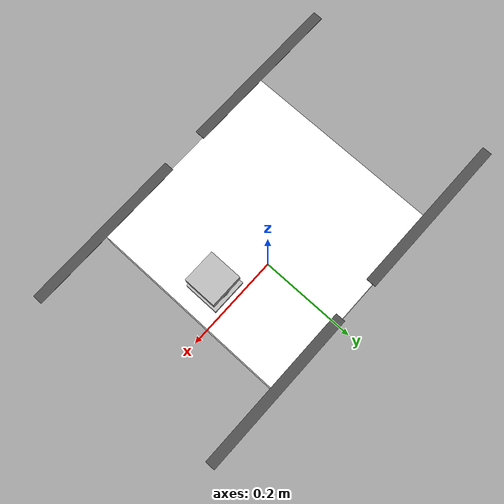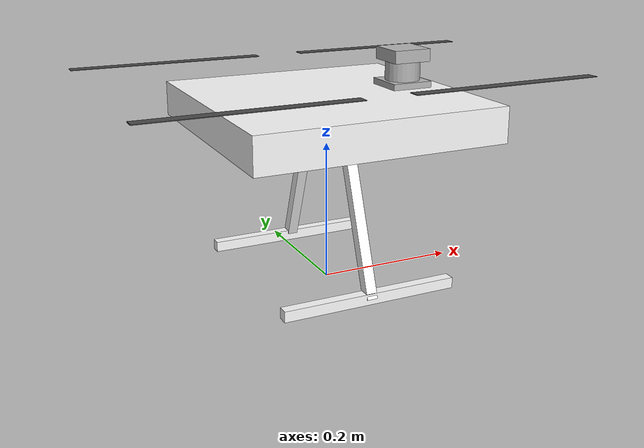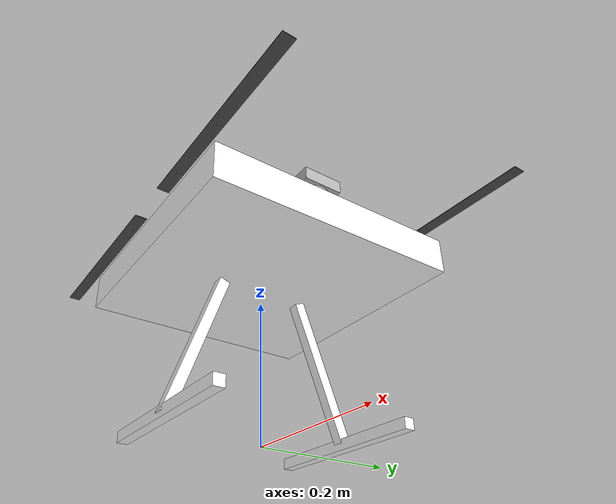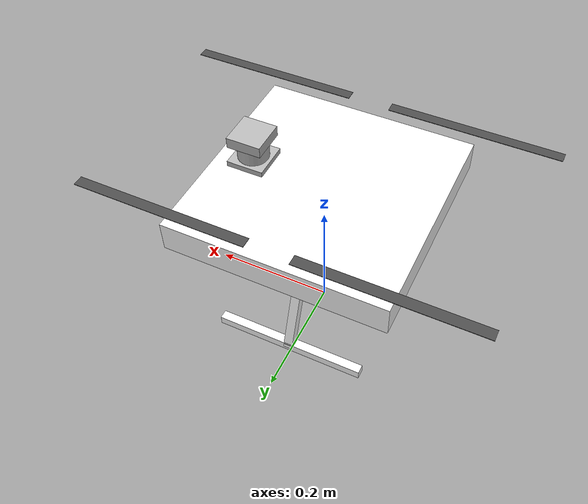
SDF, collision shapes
<?xml version="1.0" encoding="UTF-8"?>
<sdf version='1.9'>
  <model name='x500_lidar_2d'>
    <include merge='true'>
      <uri>model://x500</uri>
    </include>
    <include merge='true'>
      <uri>model://lidar_2d_v2</uri>
      <pose>.12 0 .24 0 0 0</pose>
    </include>
    <joint name="LidarJoint" type="fixed">
      <parent>base_link</parent>
      <child>lidar_2d_v2/base_link</child>
    </joint>
  </model>
</sdf>

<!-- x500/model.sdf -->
<sdf version='1.9'>
  <model name='x500'>
    <include merge='true'>
      <uri>model://x500_base</uri>
    </include>

    <!-- Motor plugins -->
    <plugin filename="gz-sim-multicopter-motor-model-system" name="gz::sim::systems::MulticopterMotorModel">
      <robotNamespace>x500</robotNamespace>
      <jointName>rotor_0_joint</jointName>
      <linkName>rotor_0</linkName>
      <turningDirection>ccw</turningDirection>
      <timeConstantUp>0.0125</timeConstantUp>
      <timeConstantDown>0.025</timeConstantDown>
      <maxRotVelocity>1000.0</maxRotVelocity>
      <motorConstant>8.54858e-06</motorConstant>
      <momentConstant>0.016</momentConstant>
      <commandSubTopic>command/motor_speed</commandSubTopic>
      <actuator_number>0</actuator_number>
      <rotorDragCoefficient>8.06428e-05</rotorDragCoefficient>
      <rollingMomentCoefficient>1e-06</rollingMomentCoefficient>
      <rotorVelocitySlowdownSim>10</rotorVelocitySlowdownSim>
      <motorType>velocity</motorType>
    </plugin>

    <plugin filename="gz-sim-multicopter-motor-model-system" name="gz::sim::systems::MulticopterMotorModel">
      <robotNamespace>x500</robotNamespace>
      <jointName>rotor_1_joint</jointName>
      <linkName>rotor_1</linkName>
      <turningDirection>ccw</turningDirection>
      <timeConstantUp>0.0125</timeConstantUp>
      <timeConstantDown>0.025</timeConstantDown>
      <maxRotVelocity>1000.0</maxRotVelocity>
      <motorConstant>8.54858e-06</motorConstant>
      <momentConstant>0.016</momentConstant>
      <commandSubTopic>command/motor_speed</commandSubTopic>
      <actuator_number>1</actuator_number>
      <rotorDragCoefficient>8.06428e-05</rotorDragCoefficient>
      <rollingMomentCoefficient>1e-06</rollingMomentCoefficient>
      <rotorVelocitySlowdownSim>10</rotorVelocitySlowdownSim>
      <motorType>velocity</motorType>
    </plugin>

    <plugin filename="gz-sim-multicopter-motor-model-system" name="gz::sim::systems::MulticopterMotorModel">
      <robotNamespace>x500</robotNamespace>
      <jointName>rotor_2_joint</jointName>
      <linkName>rotor_2</linkName>
      <turningDirection>cw</turningDirection>
      <timeConstantUp>0.0125</timeConstantUp>
      <timeConstantDown>0.025</timeConstantDown>
      <maxRotVelocity>1000.0</maxRotVelocity>
      <motorConstant>8.54858e-06</motorConstant>
      <momentConstant>0.016</momentConstant>
      <commandSubTopic>command/motor_speed</commandSubTopic>
      <actuator_number>2</actuator_number>
      <rotorDragCoefficient>8.06428e-05</rotorDragCoefficient>
      <rollingMomentCoefficient>1e-06</rollingMomentCoefficient>
      <rotorVelocitySlowdownSim>10</rotorVelocitySlowdownSim>
      <motorType>velocity</motorType>
    </plugin>

    <plugin filename="gz-sim-multicopter-motor-model-system" name="gz::sim::systems::MulticopterMotorModel">
      <robotNamespace>x500</robotNamespace>
      <jointName>rotor_3_joint</jointName>
      <linkName>rotor_3</linkName>
      <turningDirection>cw</turningDirection>
      <timeConstantUp>0.0125</timeConstantUp>
      <timeConstantDown>0.025</timeConstantDown>
      <maxRotVelocity>1000.0</maxRotVelocity>
      <motorConstant>8.54858e-06</motorConstant>
      <momentConstant>0.016</momentConstant>
      <commandSubTopic>command/motor_speed</commandSubTopic>
      <actuator_number>3</actuator_number>
      <rotorDragCoefficient>8.06428e-05</rotorDragCoefficient>
      <rollingMomentCoefficient>1e-06</rollingMomentCoefficient>
      <rotorVelocitySlowdownSim>10</rotorVelocitySlowdownSim>
      <motorType>velocity</motorType>
    </plugin>

    <!-- Odometry plugin -->
    <plugin filename="gz-sim-odometry-publisher-system" name="gz::sim::systems::OdometryPublisher">
      <odom_topic>x500/odometry</odom_topic>
      <odom_frame>x500/odom</odom_frame>
      <robot_base_frame>x500</robot_base_frame>
      <dimensions>3</dimensions>
    </plugin>

    <!-- Velocity controller plugin -->
    <plugin filename="gz-sim-multicopter-control-system" name="gz::sim::systems::MulticopterVelocityControl">
      <robotNamespace>x500</robotNamespace>
      <commandSubTopic>cmd_vel</commandSubTopic>
      <enableSubTopic>enabled_motors</enableSubTopic>
      <comLinkName>base_link</comLinkName>
      <velocityGain>2.7 2.7 2.7</velocityGain>
      <attitudeGain>2 3 0.15</attitudeGain>
      <angularRateGain>0.4 0.52 0.18</angularRateGain>
      <maximumLinearAcceleration>2 2 2</maximumLinearAcceleration>

      <rotorConfiguration>
        <rotor>
          <jointName>rotor_0_joint</jointName>
          <forceConstant>8.54858e-06</forceConstant>
          <momentConstant>0.016</momentConstant>
          <direction>1</direction>
        </rotor>
        <rotor>
          <jointName>rotor_1_joint</jointName>
          <forceConstant>8.54858e-06</forceConstant>
          <momentConstant>0.016</momentConstant>
          <direction>1</direction>
        </rotor>
        <rotor>
          <jointName>rotor_2_joint</jointName>
          <forceConstant>8.54858e-06</forceConstant>
          <momentConstant>0.016</momentConstant>
          <direction>-1</direction>
        </rotor>
        <rotor>
          <jointName>rotor_3_joint</jointName>
          <forceConstant>8.54858e-06</forceConstant>
          <momentConstant>0.016</momentConstant>
          <direction>-1</direction>
        </rotor>
      </rotorConfiguration>
    </plugin>

    <!-- Pose publisher for TF (used by ros_gz_bridge → /tf) -->
    <plugin filename="gz-sim-pose-publisher-system" name="gz::sim::systems::PosePublisher">
      <publish_link_pose>true</publish_link_pose>
      <publish_sensor_pose>true</publish_sensor_pose>
      <publish_collision_pose>false</publish_collision_pose>
      <publish_visual_pose>false</publish_visual_pose>
      <publish_nested_model_pose>false</publish_nested_model_pose>
      <use_pose_vector_msg>true</use_pose_vector_msg>
      <update_frequency>10</update_frequency>
      <static_publisher>false</static_publisher>
    </plugin>

  </model>
</sdf>

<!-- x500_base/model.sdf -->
<sdf version='1.9'>
  <model name='x500_base'>
    <pose>0 0 .24 0 0 0</pose>
    <self_collide>false</self_collide>
    <static>false</static>
    <link name="base_link">
      <inertial>
        <mass>2.0</mass>
        <inertia>
          <ixx>0.02166666666666667</ixx>
          <ixy>0</ixy>
          <ixz>0</ixz>
          <iyy>0.02166666666666667</iyy>
          <iyz>0</iyz>
          <izz>0.04000000000000001</izz>
        </inertia>
      </inertial>
      <gravity>true</gravity>
      <velocity_decay/>
      <visual name="base_link_visual">
        <pose>0 0 .025 0 0 3.141592654</pose>
        <geometry>
          <mesh>
            <scale>1 1 1</scale>
            <uri>model://x500_base/meshes/NXP-HGD-CF.dae</uri>
          </mesh>
        </geometry>
      </visual>
      <visual name="5010_motor_base_0">
        <pose>0.174 0.174 .032 0 0 -.45</pose>
        <geometry>
          <mesh>
            <scale>1 1 1</scale>
            <uri>model://x500_base/meshes/5010Base.dae</uri>
          </mesh>
        </geometry>
      </visual>
      <visual name="5010_motor_base_1">
        <pose>-0.174 0.174 .032 0 0 -.45</pose>
        <geometry>
          <mesh>
            <scale>1 1 1</scale>
            <uri>model://x500_base/meshes/5010Base.dae</uri>
          </mesh>
        </geometry>
      </visual>
      <visual name="5010_motor_base_2">
        <pose>0.174 -0.174 .032 0 0 -.45</pose>
        <geometry>
          <mesh>
            <scale>1 1 1</scale>
            <uri>model://x500_base/meshes/5010Base.dae</uri>
          </mesh>
        </geometry>
      </visual>
      <visual name="5010_motor_base_3">
        <pose>-0.174 -0.174 .032 0 0 -.45</pose>
        <geometry>
          <mesh>
            <scale>1 1 1</scale>
            <uri>model://x500_base/meshes/5010Base.dae</uri>
          </mesh>
        </geometry>
      </visual>
      <visual name="NXP_FMUK66_FRONT">
        <pose>0.047 .001 .043 1 0 1.57</pose>
        <cast_shadows>false</cast_shadows>
        <geometry>
          <plane>
            <normal>0 0 1</normal>
            <size>.013 .007</size>
          </plane>
        </geometry>
        <material>
          <diffuse>1.0 1.0 1.0</diffuse>
          <specular>1.0 1.0 1.0</specular>
          <pbr>
            <metal>
              <albedo_map>model://x500_base/materials/textures/nxp.png</albedo_map>
            </metal>
          </pbr>
        </material>
      </visual>
      <visual name="NXP_FMUK66_TOP">
        <pose>-0.023 0 .0515 0 0 -1.57</pose>
        <cast_shadows>false</cast_shadows>
        <geometry>
          <plane>
            <normal>0 0 1</normal>
            <size>.013 .007</size>
          </plane>
        </geometry>
        <material>
          <diffuse>1.0 1.0 1.0</diffuse>
          <specular>1.0 1.0 1.0</specular>
          <pbr>
            <metal>
              <albedo_map>model://x500_base/materials/textures/nxp.png</albedo_map>
            </metal>
          </pbr>
        </material>
      </visual>
      <visual name="RDDRONE_FMUK66_TOP">
        <pose>-.03 0 .0515 0 0 -1.57</pose>
        <cast_shadows>false</cast_shadows>
        <geometry>
          <plane>
            <normal>0 0 1</normal>
            <size>.032 .0034</size>
          </plane>
        </geometry>
        <material>
          <diffuse>1.0 1.0 1.0</diffuse>
          <specular>1.0 1.0 1.0</specular>
          <pbr>
            <metal>
              <albedo_map>model://x500_base/materials/textures/rd.png</albedo_map>
            </metal>
          </pbr>
        </material>
      </visual>
      <collision name="base_link_collision_0">
        <pose>0 0 .007 0 0 0</pose>
        <geometry>
          <box>
            <size>0.35355339059327373 0.35355339059327373 0.05</size>
          </box>
        </geometry>
        <surface>
          <contact>
            <ode>
              <min_depth>0.001</min_depth>
              <max_vel>0</max_vel>
            </ode>
          </contact>
          <friction>
            <ode/>
          </friction>
        </surface>
      </collision>
      <collision name="base_link_collision_1">
        <pose>0 -0.098 -.123 -0.35 0 0</pose>
        <geometry>
          <box>
            <size>0.015 0.015 0.21</size>
          </box>
        </geometry>
        <surface>
          <contact>
            <ode>
              <min_depth>0.001</min_depth>
              <max_vel>0</max_vel>
            </ode>
          </contact>
          <friction>
            <ode/>
          </friction>
        </surface>
      </collision>
      <collision name="base_link_collision_2">
        <pose>0 0.098 -.123 0.35 0 0</pose>
        <geometry>
          <box>
            <size>0.015 0.015 0.21</size>
          </box>
        </geometry>
        <surface>
          <contact>
            <ode>
              <min_depth>0.001</min_depth>
              <max_vel>0</max_vel>
            </ode>
          </contact>
          <friction>
            <ode/>
          </friction>
        </surface>
      </collision>
      <collision name="base_link_collision_3">
        <pose>0 -0.132 -.2195 0 0 0</pose>
        <geometry>
          <box>
            <size>0.25 0.015 0.015</size>
          </box>
        </geometry>
        <surface>
          <contact>
            <ode>
              <min_depth>0.001</min_depth>
              <max_vel>0</max_vel>
            </ode>
          </contact>
          <friction>
            <ode/>
          </friction>
        </surface>
      </collision>
      <collision name="base_link_collision_4">
        <pose>0 0.132 -.2195 0 0 0</pose>
        <geometry>
          <box>
            <size>0.25 0.015 0.015</size>
          </box>
        </geometry>
        <surface>
          <contact>
            <ode>
              <min_depth>0.001</min_depth>
              <max_vel>0</max_vel>
            </ode>
          </contact>
          <friction>
            <ode/>
          </friction>
        </surface>
      </collision>
      <!-- Sensors -->
      <sensor name="air_pressure_sensor" type="air_pressure">
        <always_on>1</always_on>
        <update_rate>50</update_rate>
        <topic>x500/air_pressure</topic>
        <air_pressure>
          <pressure>
            <noise type="gaussian">
              <mean>0</mean>
              <stddev>0.01</stddev>
            </noise>
          </pressure>
        </air_pressure>
      </sensor>
      <sensor name="imu_sensor" type="imu">
        <topic>x500/imu</topic>
        <always_on>1</always_on>
        <update_rate>250</update_rate>
        <imu>
          <angular_velocity>
            <x>
              <noise type="gaussian">
                <mean>0</mean>
                <stddev>0.00018665</stddev>
                <dynamic_bias_stddev>3.8785e-05</dynamic_bias_stddev>
                <dynamic_bias_correlation_time>1000</dynamic_bias_correlation_time>
              </noise>
            </x>
            <y>
              <noise type="gaussian">
                <mean>0</mean>
                <stddev>0.00018665</stddev>
                <dynamic_bias_stddev>3.8785e-05</dynamic_bias_stddev>
                <dynamic_bias_correlation_time>1000</dynamic_bias_correlation_time>
              </noise>
            </y>
            <z>
              <noise type="gaussian">
                <mean>0</mean>
                <stddev>0.00018665</stddev>
                <dynamic_bias_stddev>3.8785e-05</dynamic_bias_stddev>
                <dynamic_bias_correlation_time>1000</dynamic_bias_correlation_time>
              </noise>
            </z>
          </angular_velocity>
          <linear_acceleration>
            <x>
              <noise type="gaussian">
                <mean>0</mean>
                <stddev>0.00186</stddev>
                <dynamic_bias_stddev>0.006</dynamic_bias_stddev>
                <dynamic_bias_correlation_time>300</dynamic_bias_correlation_time>
              </noise>
            </x>
            <y>
              <noise type="gaussian">
                <mean>0</mean>
                <stddev>0.00186</stddev>
                <dynamic_bias_stddev>0.006</dynamic_bias_stddev>
                <dynamic_bias_correlation_time>300</dynamic_bias_correlation_time>
              </noise>
            </y>
            <z>
              <noise type="gaussian">
                <mean>0</mean>
                <stddev>0.00186</stddev>
                <dynamic_bias_stddev>0.006</dynamic_bias_stddev>
                <dynamic_bias_correlation_time>300</dynamic_bias_correlation_time>
              </noise>
            </z>
          </linear_acceleration>
        </imu>
      </sensor>
      <sensor name="navsat_sensor" type="navsat">
        <always_on>1</always_on>
        <update_rate>30</update_rate>
        <topic>x500/navsat</topic>
      </sensor>
    </link>

    <link name="rotor_0">
      <gravity>true</gravity>
      <self_collide>false</self_collide>
      <velocity_decay/>
      <pose>0.174 -0.174 0.06 0 0 0</pose>
      <inertial>
          <mass>0.016076923076923075</mass>
          <inertia>
            <ixx>3.8464910483993325e-07</ixx>
            <iyy>2.6115851691700804e-05</iyy>
            <izz>2.649858234714004e-05</izz>
          </inertia>
        </inertial>
      <visual name="rotor_0_visual">
        <pose>-0.022 -0.14638461538461536 -0.016 0 0 0</pose>
        <geometry>
          <mesh>
            <scale>0.8461538461538461 0.8461538461538461 0.8461538461538461</scale>
            <uri>model://x500_base/meshes/1345_prop_ccw.stl</uri>
          </mesh>
        </geometry>
          <material>
            <ambient>0.3 0.3 0.3 1</ambient>
            <diffuse>0.3 0.3 0.3 1</diffuse>
            <specular>0.1 0.1 0.1 1</specular>
            <emissive>0 0 0 1</emissive>
          </material>
      </visual>
      <visual name="rotor_0_visual_motor_bell">
        <pose>0 0 -.032 0 0 0</pose>
        <geometry>
          <mesh>
            <scale>1 1 1</scale>
            <uri>model://x500_base/meshes/5010Bell.dae</uri>
          </mesh>
        </geometry>
      </visual>
      <collision name="rotor_0_collision">
        <pose>0 0 0 0 0 0 </pose>
        <geometry>
          <box>
            <size>0.2792307692307692 0.016923076923076923 0.0008461538461538462</size>
          </box>
        </geometry>
        <surface>
          <contact>
            <ode>
              <min_depth>0.001</min_depth>
              <max_vel>0</max_vel>
            </ode>
          </contact>
          <friction>
            <ode/>
          </friction>
        </surface>
      </collision>
    </link>
    <joint name="rotor_0_joint" type="revolute">
      <parent>base_link</parent>
      <child>rotor_0</child>
      <axis>
        <xyz>0 0 1</xyz>
        <limit>
          <lower>-1e+16</lower>
          <upper>1e+16</upper>
        </limit>
        <dynamics>
          <spring_reference>0</spring_reference>
          <spring_stiffness>0</spring_stiffness>
        </dynamics>
      </axis>
    </joint>
    <link name="rotor_1">
      <gravity>true</gravity>
      <self_collide>false</self_collide>
      <velocity_decay/>
      <pose>-0.174 0.174 0.06 0 0 0</pose>
      <inertial>
          <mass>0.016076923076923075</mass>
          <inertia>
            <ixx>3.8464910483993325e-07</ixx>
            <iyy>2.6115851691700804e-05</iyy>
            <izz>2.649858234714004e-05</izz>
          </inertia>
        </inertial>
      <visual name="rotor_1_visual">
        <pose>-0.022 -0.14638461538461536 -0.016 0 0 0</pose>
        <geometry>
          <mesh>
            <scale>0.8461538461538461 0.8461538461538461 0.8461538461538461</scale>
            <uri>model://x500_base/meshes/1345_prop_ccw.stl</uri>
          </mesh>
        </geometry>
          <material>
            <ambient>0.3 0.3 0.3 1</ambient>
            <diffuse>0.3 0.3 0.3 1</diffuse>
            <specular>0.1 0.1 0.1 1</specular>
            <emissive>0 0 0 1</emissive>
          </material>
      </visual>
      <visual name="rotor_1_visual_motor_top">
        <pose>0 0 -.032 0 0 0</pose>
        <geometry>
          <mesh>
            <scale>1 1 1</scale>
            <uri>model://x500_base/meshes/5010Bell.dae</uri>
          </mesh>
        </geometry>
      </visual>
      <collision name="rotor_1_collision">
        <pose>0 0 0 0 0 0 </pose>
        <geometry>
          <box>
            <size>0.2792307692307692 0.016923076923076923 0.0008461538461538462</size>
          </box>
        </geometry>
        <surface>
          <contact>
            <ode>
              <min_depth>0.001</min_depth>
              <max_vel>0</max_vel>
            </ode>
          </contact>
          <friction>
            <ode/>
          </friction>
        </surface>
      </collision>
    </link>
    <joint name="rotor_1_joint" type="revolute">
      <parent>base_link</parent>
      <child>rotor_1</child>
      <axis>
        <xyz>0 0 1</xyz>
        <limit>
          <lower>-1e+16</lower>
          <upper>1e+16</upper>
        </limit>
        <dynamics>
          <spring_reference>0</spring_reference>
          <spring_stiffness>0</spring_stiffness>
        </dynamics>
      </axis>
    </joint>
    <link name="rotor_2">
      <gravity>true</gravity>
      <self_collide>false</self_collide>
      <velocity_decay/>
      <pose>0.174 0.174 0.06 0 0 0</pose>
      <inertial>
          <mass>0.016076923076923075</mass>
          <inertia>
            <ixx>3.8464910483993325e-07</ixx>
            <iyy>2.6115851691700804e-05</iyy>
            <izz>2.649858234714004e-05</izz>
          </inertia>
        </inertial>
      <visual name="rotor_2_visual">
        <pose>-0.022 -0.14638461538461536 -0.016 0 0 0</pose>
        <geometry>
          <mesh>
            <scale>0.8461538461538461 0.8461538461538461 0.8461538461538461</scale>
            <uri>model://x500_base/meshes/1345_prop_cw.stl</uri>
          </mesh>
        </geometry>
          <material>
            <ambient>0.3 0.3 0.3 1</ambient>
            <diffuse>0.3 0.3 0.3 1</diffuse>
            <specular>0.1 0.1 0.1 1</specular>
            <emissive>0 0 0 1</emissive>
          </material>
      </visual>
      <visual name="rotor_2_visual_motor_top">
        <pose>0 0 -.032 0 0 0</pose>
        <geometry>
          <mesh>
            <scale>1 1 1</scale>
            <uri>model://x500_base/meshes/5010Bell.dae</uri>
          </mesh>
        </geometry>
      </visual>
      <collision name="rotor_2_collision">
        <pose>0 0 0 0 0 0 </pose>
        <geometry>
          <box>
            <size>0.2792307692307692 0.016923076923076923 0.0008461538461538462</size>
          </box>
        </geometry>
        <surface>
          <contact>
            <ode>
              <min_depth>0.001</min_depth>
              <max_vel>0</max_vel>
            </ode>
          </contact>
          <friction>
            <ode/>
          </friction>
        </surface>
      </collision>
    </link>
    <joint name="rotor_2_joint" type="revolute">
      <parent>base_link</parent>
      <child>rotor_2</child>
      <axis>
        <xyz>0 0 1</xyz>
        <limit>
          <lower>-1e+16</lower>
          <upper>1e+16</upper>
        </limit>
        <dynamics>
          <spring_reference>0</spring_reference>
          <spring_stiffness>0</spring_stiffness>
        </dynamics>
      </axis>
    </joint>
    <link name="rotor_3">
      <gravity>true</gravity>
      <self_collide>false</self_collide>
      <velocity_decay/>
      <pose>-0.174 -0.174 0.06 0 0 0</pose>
      <inertial>
          <mass>0.016076923076923075</mass>
          <inertia>
            <ixx>3.8464910483993325e-07</ixx>
            <iyy>2.6115851691700804e-05</iyy>
            <izz>2.649858234714004e-05</izz>
          </inertia>
        </inertial>
      <visual name="rotor_3_visual">
        <pose>-0.022 -0.14638461538461536 -0.016 0 0 0</pose>
        <geometry>
          <mesh>
            <scale>0.8461538461538461 0.8461538461538461 0.8461538461538461</scale>
            <uri>model://x500_base/meshes/1345_prop_cw.stl</uri>
          </mesh>
        </geometry>
          <material>
            <ambient>0.3 0.3 0.3 1</ambient>
            <diffuse>0.3 0.3 0.3 1</diffuse>
            <specular>0.1 0.1 0.1 1</specular>
            <emissive>0 0 0 1</emissive>
          </material>
      </visual>
      <visual name="rotor_3_visual_motor_top">
        <pose>0 0 -.032 0 0 0</pose>
        <geometry>
          <mesh>
            <scale>1 1 1</scale>
            <uri>model://x500_base/meshes/5010Bell.dae</uri>
          </mesh>
        </geometry>
      </visual>
      <collision name="rotor_3_collision">
        <pose>0 0 0 0 0 0 </pose>
        <geometry>
          <box>
            <size>0.2792307692307692 0.016923076923076923 0.0008461538461538462</size>
          </box>
        </geometry>
        <surface>
          <contact>
            <ode>
              <min_depth>0.001</min_depth>
              <max_vel>0</max_vel>
            </ode>
          </contact>
          <friction>
            <ode/>
          </friction>
        </surface>
      </collision>
    </link>
    <joint name="rotor_3_joint" type="revolute">
      <parent>base_link</parent>
      <child>rotor_3</child>
      <axis>
        <xyz>0 0 1</xyz>
        <limit>
          <lower>-1e+16</lower>
          <upper>1e+16</upper>
        </limit>
        <dynamics>
          <spring_reference>0</spring_reference>
          <spring_stiffness>0</spring_stiffness>
        </dynamics>
      </axis>
    </joint>
  </model>
</sdf>

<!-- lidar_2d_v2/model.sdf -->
<sdf version="1.6">
  <model name="lidar_2d_v2">
    <link name="lidar_2d_v2/base_link">
      <pose>0 0 0 0 0 0</pose>
      <gravity>false</gravity>
      <inertial>
        <mass>1e-9</mass>
        <inertia>
          <ixx>1e-9</ixx>
          <ixy>0</ixy>
          <ixz>0</ixz>
          <iyy>1e-9</iyy>
          <iyz>0</iyz>
          <izz>1e-9</izz>
        </inertia>
      </inertial>
      <collision name="collision_base">
        <pose>0 0 0.0205 0 0 0</pose>
        <geometry>
          <box>
            <size>0.06 0.06 0.041</size>
          </box>
        </geometry>
      </collision>
      <collision name="collision_mid">
        <pose>0 0 0.055 0 0 0</pose>
        <geometry>
          <cylinder>
            <radius>0.025</radius>
            <length>0.028</length>
          </cylinder>
        </geometry>
      </collision>
      <collision name="collision_top">
        <pose>0 0 0.078 0 0 0</pose>
        <geometry>
          <box>
            <size>0.056 0.056 0.018</size>
          </box>
        </geometry>
      </collision>
      <visual name="visual">
        <geometry>
          <mesh>
            <uri>model://lidar_2d_v2/meshes/lidar_2d_v2.dae</uri>
          </mesh>
        </geometry>
      </visual>
      <sensor name="lidar_2d_v2" type="gpu_lidar">
        <topic>/x500/scan</topic>
        <pose>0 0 0.08 0 0 0</pose>
        <ray>
          <scan>
            <horizontal>
              <samples>1080</samples>
              <resolution>1</resolution>
              <min_angle>-2.356195</min_angle>
              <max_angle>2.356195</max_angle>
            </horizontal>
          </scan>
          <range>
            <min>0.1</min>
            <max>30</max>
            <resolution>0.01</resolution>
          </range>
          <noise>
            <type>gaussian</type>
            <mean>0.0</mean>
            <stddev>0.001</stddev>
          </noise>
        </ray>
        <always_on>0</always_on>
        <update_rate>30</update_rate>
      </sensor>
    </link>
  </model>
</sdf>
